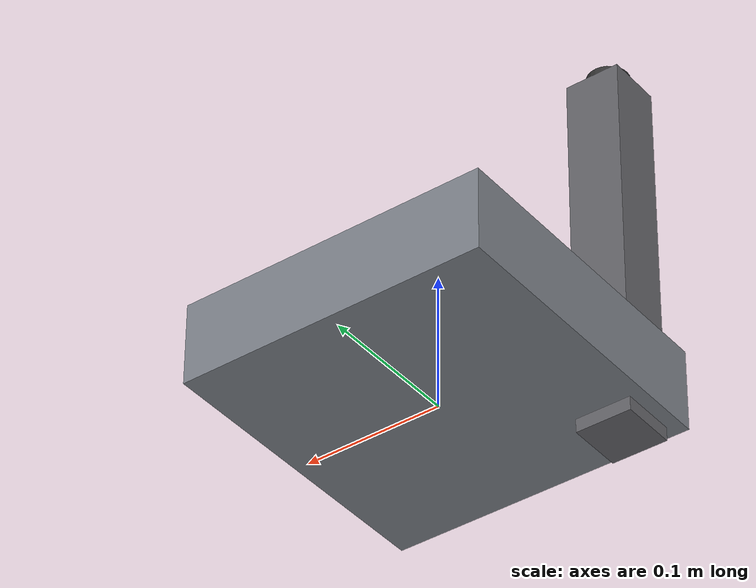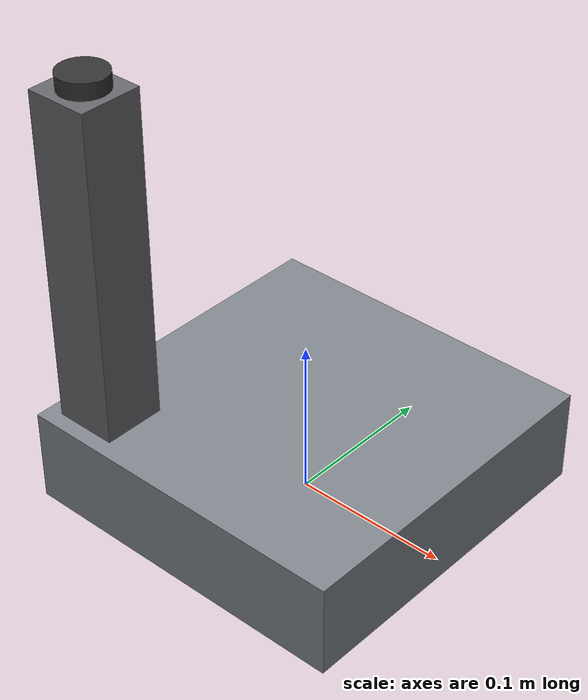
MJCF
<?xml version="1.0" encoding="utf-8"?>
<mujoco model="cnc_mill">
  <compiler angle="radian" autolimits="true"/>
  <default>
    <default class="body"><geom contype="1" conaffinity="1"/></default>
  </default>
  <worldbody>
    <body name="base">
      <geom type="box" size="0.11 0.11 0.03" pos="0 0 0.03" rgba="0.5 0.52 0.55 1" class="body"/>
      <geom type="box" size="0.02 0.02 0.14" pos="-0.08 -0.08 0.13" rgba="0.4 0.4 0.42 1" class="body"/>
      <body name="spindle_head" pos="-0.08 -0.08 0.24">
        <joint name="spindle_head_joint" type="slide" axis="0 0 1" range="-0.06 0" damping="1.0" frictionloss="0.3"/>
  <geom type="cylinder" size="0.015 0.04" pos="0 0 0" rgba="0.2 0.2 0.2 1" class="body"/>
      </body>
    </body>
  </worldbody>
</mujoco>
